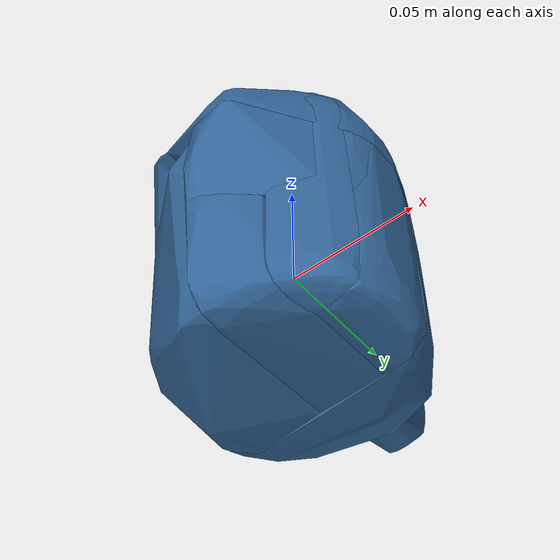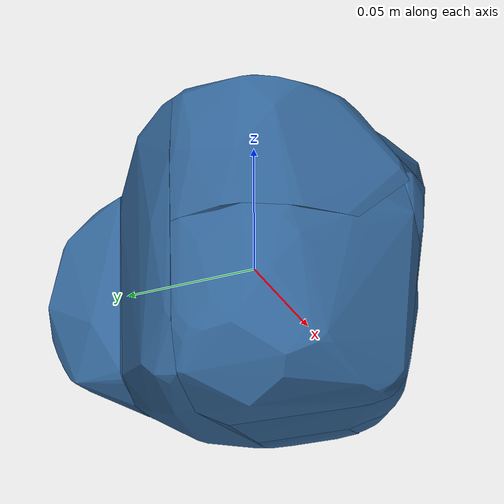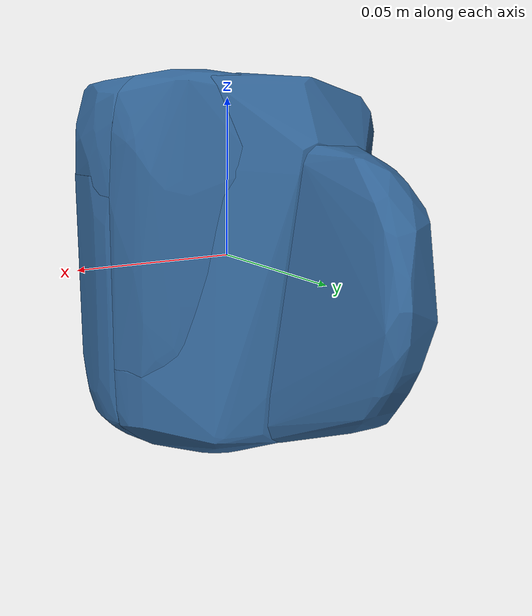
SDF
<?xml version='1.0' encoding='UTF-8'?>
<!-- This SDF was autogenerated by obj_to_drake_sdf.py -->
<sdf version="1.7">
  <model name="mug_video">
    <link name="mug_video">
      <inertial>
        <pose>0 0 0 0 0 0</pose>
        <mass>0.05</mass>
        <inertia>
          <ixx>8.5470817e-05</ixx>
          <iyy>7.7548208e-05</iyy>
          <izz>6.966723e-05</izz>
          <ixy>1.1757622e-06</ixy>
          <ixz>3.8230417e-07</ixz>
          <iyz>-1.7264607e-06</iyz>
        </inertia>
      </inertial>
      <visual name="convex_0">
        <pose>0 0 0 0 0 0</pose>
        <geometry>
          <mesh>
            <uri>mug_video_convex_0.obj</uri>
          </mesh>
        </geometry>
        <material>
          <diffuse>0.19607843137254902 0.39215686274509803 0.5882352941176471 1</diffuse>
        </material>
      </visual>
      <collision name="convex_0_volume">
        <pose>0 0 0 0 0 0</pose>
        <geometry>
          <mesh>
            <uri>mug_video_convex_0.obj</uri>
          </mesh>
        </geometry>
        <drake:proximity_properties xmlns:drake="uri:drake">
          <drake:compliant_hydroelastic/>
          <drake:hydroelastic_modulus> 3.0e7 </drake:hydroelastic_modulus>
          <drake:mesh_resolution_hint> 0.02 </drake:mesh_resolution_hint>
          <drake:hunt_crossley_dissipation>10</drake:hunt_crossley_dissipation>
          <drake:mu_dynamic>0.3</drake:mu_dynamic>
        </drake:proximity_properties>
      </collision>
      <visual name="convex_1">
        <pose>0 0 0 0 0 0</pose>
        <geometry>
          <mesh>
            <uri>mug_video_convex_1.obj</uri>
          </mesh>
        </geometry>
        <material>
          <diffuse>0.19607843137254902 0.39215686274509803 0.5882352941176471 1</diffuse>
        </material>
      </visual>
      <collision name="convex_1_volume">
        <pose>0 0 0 0 0 0</pose>
        <geometry>
          <mesh>
            <uri>mug_video_convex_1.obj</uri>
          </mesh>
        </geometry>
        <drake:proximity_properties xmlns:drake="uri:drake">
          <drake:compliant_hydroelastic/>
          <drake:hydroelastic_modulus> 3.0e7 </drake:hydroelastic_modulus>
          <drake:mesh_resolution_hint> 0.02 </drake:mesh_resolution_hint>
          <drake:hunt_crossley_dissipation>10</drake:hunt_crossley_dissipation>
          <drake:mu_dynamic>0.3</drake:mu_dynamic>
        </drake:proximity_properties>
      </collision>
      <visual name="convex_2">
        <pose>0 0 0 0 0 0</pose>
        <geometry>
          <mesh>
            <uri>mug_video_convex_2.obj</uri>
          </mesh>
        </geometry>
        <material>
          <diffuse>0.19607843137254902 0.39215686274509803 0.5882352941176471 1</diffuse>
        </material>
      </visual>
      <collision name="convex_2_volume">
        <pose>0 0 0 0 0 0</pose>
        <geometry>
          <mesh>
            <uri>mug_video_convex_2.obj</uri>
          </mesh>
        </geometry>
        <drake:proximity_properties xmlns:drake="uri:drake">
          <drake:compliant_hydroelastic/>
          <drake:hydroelastic_modulus> 3.0e7 </drake:hydroelastic_modulus>
          <drake:mesh_resolution_hint> 0.02 </drake:mesh_resolution_hint>
          <drake:hunt_crossley_dissipation>10</drake:hunt_crossley_dissipation>
          <drake:mu_dynamic>0.3</drake:mu_dynamic>
        </drake:proximity_properties>
      </collision>
      <visual name="convex_3">
        <pose>0 0 0 0 0 0</pose>
        <geometry>
          <mesh>
            <uri>mug_video_convex_3.obj</uri>
          </mesh>
        </geometry>
        <material>
          <diffuse>0.19607843137254902 0.39215686274509803 0.5882352941176471 1</diffuse>
        </material>
      </visual>
      <collision name="convex_3_volume">
        <pose>0 0 0 0 0 0</pose>
        <geometry>
          <mesh>
            <uri>mug_video_convex_3.obj</uri>
          </mesh>
        </geometry>
        <drake:proximity_properties xmlns:drake="uri:drake">
          <drake:compliant_hydroelastic/>
          <drake:hydroelastic_modulus> 3.0e7 </drake:hydroelastic_modulus>
          <drake:mesh_resolution_hint> 0.02 </drake:mesh_resolution_hint>
          <drake:hunt_crossley_dissipation>10</drake:hunt_crossley_dissipation>
          <drake:mu_dynamic>0.3</drake:mu_dynamic>
        </drake:proximity_properties>
      </collision>
      <visual name="convex_4">
        <pose>0 0 0 0 0 0</pose>
        <geometry>
          <mesh>
            <uri>mug_video_convex_4.obj</uri>
          </mesh>
        </geometry>
        <material>
          <diffuse>0.19607843137254902 0.39215686274509803 0.5882352941176471 1</diffuse>
        </material>
      </visual>
      <collision name="convex_4_volume">
        <pose>0 0 0 0 0 0</pose>
        <geometry>
          <mesh>
            <uri>mug_video_convex_4.obj</uri>
          </mesh>
        </geometry>
        <drake:proximity_properties xmlns:drake="uri:drake">
          <drake:compliant_hydroelastic/>
          <drake:hydroelastic_modulus> 3.0e7 </drake:hydroelastic_modulus>
          <drake:mesh_resolution_hint> 0.02 </drake:mesh_resolution_hint>
          <drake:hunt_crossley_dissipation>10</drake:hunt_crossley_dissipation>
          <drake:mu_dynamic>0.3</drake:mu_dynamic>
        </drake:proximity_properties>
      </collision>
      <visual name="convex_5">
        <pose>0 0 0 0 0 0</pose>
        <geometry>
          <mesh>
            <uri>mug_video_convex_5.obj</uri>
          </mesh>
        </geometry>
        <material>
          <diffuse>0.19607843137254902 0.39215686274509803 0.5882352941176471 1</diffuse>
        </material>
      </visual>
      <collision name="convex_5_volume">
        <pose>0 0 0 0 0 0</pose>
        <geometry>
          <mesh>
            <uri>mug_video_convex_5.obj</uri>
          </mesh>
        </geometry>
        <drake:proximity_properties xmlns:drake="uri:drake">
          <drake:compliant_hydroelastic/>
          <drake:hydroelastic_modulus> 3.0e7 </drake:hydroelastic_modulus>
          <drake:mesh_resolution_hint> 0.02 </drake:mesh_resolution_hint>
          <drake:hunt_crossley_dissipation>10</drake:hunt_crossley_dissipation>
          <drake:mu_dynamic>0.3</drake:mu_dynamic>
        </drake:proximity_properties>
      </collision>
      <visual name="convex_6">
        <pose>0 0 0 0 0 0</pose>
        <geometry>
          <mesh>
            <uri>mug_video_convex_6.obj</uri>
          </mesh>
        </geometry>
        <material>
          <diffuse>0.19607843137254902 0.39215686274509803 0.5882352941176471 1</diffuse>
        </material>
      </visual>
      <collision name="convex_6_volume">
        <pose>0 0 0 0 0 0</pose>
        <geometry>
          <mesh>
            <uri>mug_video_convex_6.obj</uri>
          </mesh>
        </geometry>
        <drake:proximity_properties xmlns:drake="uri:drake">
          <drake:compliant_hydroelastic/>
          <drake:hydroelastic_modulus> 3.0e7 </drake:hydroelastic_modulus>
          <drake:mesh_resolution_hint> 0.02 </drake:mesh_resolution_hint>
          <drake:hunt_crossley_dissipation>10</drake:hunt_crossley_dissipation>
          <drake:mu_dynamic>0.3</drake:mu_dynamic>
        </drake:proximity_properties>
      </collision>
      <visual name="convex_7">
        <pose>0 0 0 0 0 0</pose>
        <geometry>
          <mesh>
            <uri>mug_video_convex_7.obj</uri>
          </mesh>
        </geometry>
        <material>
          <diffuse>0.19607843137254902 0.39215686274509803 0.5882352941176471 1</diffuse>
        </material>
      </visual>
      <collision name="convex_7_volume">
        <pose>0 0 0 0 0 0</pose>
        <geometry>
          <mesh>
            <uri>mug_video_convex_7.obj</uri>
          </mesh>
        </geometry>
        <drake:proximity_properties xmlns:drake="uri:drake">
          <drake:compliant_hydroelastic/>
          <drake:hydroelastic_modulus> 3.0e7 </drake:hydroelastic_modulus>
          <drake:mesh_resolution_hint> 0.02 </drake:mesh_resolution_hint>
          <drake:hunt_crossley_dissipation>10</drake:hunt_crossley_dissipation>
          <drake:mu_dynamic>0.3</drake:mu_dynamic>
        </drake:proximity_properties>
      </collision>
      <visual name="convex_8">
        <pose>0 0 0 0 0 0</pose>
        <geometry>
          <mesh>
            <uri>mug_video_convex_8.obj</uri>
          </mesh>
        </geometry>
        <material>
          <diffuse>0.19607843137254902 0.39215686274509803 0.5882352941176471 1</diffuse>
        </material>
      </visual>
      <collision name="convex_8_volume">
        <pose>0 0 0 0 0 0</pose>
        <geometry>
          <mesh>
            <uri>mug_video_convex_8.obj</uri>
          </mesh>
        </geometry>
        <drake:proximity_properties xmlns:drake="uri:drake">
          <drake:compliant_hydroelastic/>
          <drake:hydroelastic_modulus> 3.0e7 </drake:hydroelastic_modulus>
          <drake:mesh_resolution_hint> 0.02 </drake:mesh_resolution_hint>
          <drake:hunt_crossley_dissipation>10</drake:hunt_crossley_dissipation>
          <drake:mu_dynamic>0.3</drake:mu_dynamic>
        </drake:proximity_properties>
      </collision>
      <visual name="convex_9">
        <pose>0 0 0 0 0 0</pose>
        <geometry>
          <mesh>
            <uri>mug_video_convex_9.obj</uri>
          </mesh>
        </geometry>
        <material>
          <diffuse>0.19607843137254902 0.39215686274509803 0.5882352941176471 1</diffuse>
        </material>
      </visual>
      <collision name="convex_9_volume">
        <pose>0 0 0 0 0 0</pose>
        <geometry>
          <mesh>
            <uri>mug_video_convex_9.obj</uri>
          </mesh>
        </geometry>
        <drake:proximity_properties xmlns:drake="uri:drake">
          <drake:compliant_hydroelastic/>
          <drake:hydroelastic_modulus> 3.0e7 </drake:hydroelastic_modulus>
          <drake:mesh_resolution_hint> 0.02 </drake:mesh_resolution_hint>
          <drake:hunt_crossley_dissipation>10</drake:hunt_crossley_dissipation>
          <drake:mu_dynamic>0.3</drake:mu_dynamic>
        </drake:proximity_properties>
      </collision>
    </link>
  </model>
</sdf>
